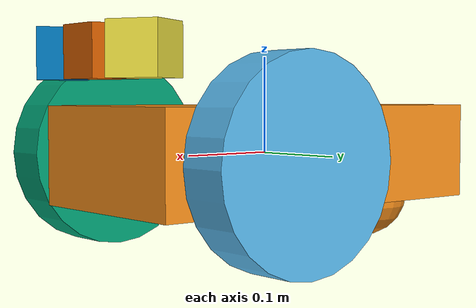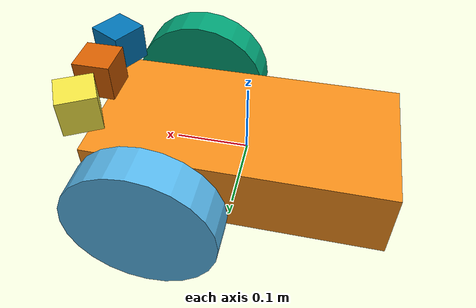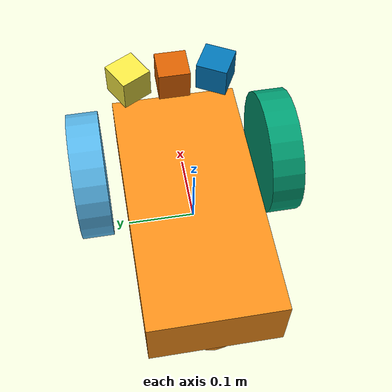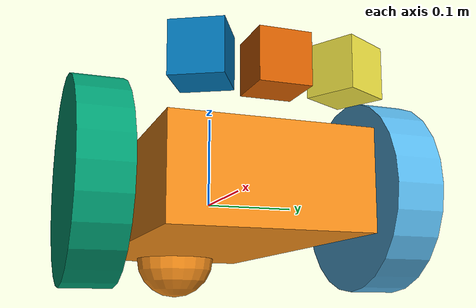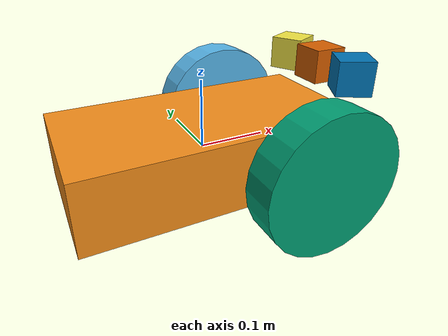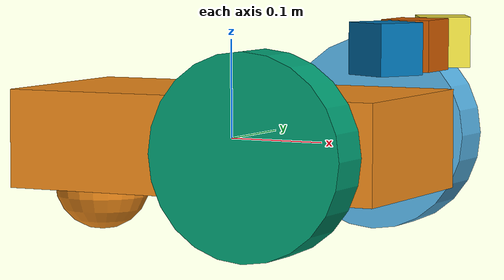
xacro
<?xml version='1.0'?>

<robot name="myrobot" xmlns:xacro="http://www.ros.org/wiki/xacro">

  <xacro:property name="cameraSize" value="0.05"/>
  <xacro:property name="cameraMass" value="0.1"/>

  <xacro:include filename="$(find mybot_description)/urdf/mybot.gazebo" />
  <xacro:include filename="$(find mybot_description)/urdf/materials.xacro" />
  <xacro:include filename="$(find mybot_description)/urdf/macros.xacro" />

  <link name='chassis'>
    <pose>0 0 0.1 0 0 0</pose>

    <inertial>
      <mass value="10.0"/>
      <origin xyz="0.0 0 0.1" rpy=" 0 0 0"/>
      <inertia
          ixx="0.5" ixy="0" ixz="0"
          iyy="1.0" iyz="0"
          izz="0.1"
      />
    </inertial>

    <collision name='collision'>
      <geometry>
        <box size=".4 .2 .1"/>
      </geometry>
    </collision>

    <visual name='chassis_visual'>
      <origin xyz="0 0 0" rpy=" 0 0 0"/>
      <geometry>
        <box size=".4 .2 .1"/>
      </geometry>
    </visual>

    <collision name='caster_collision'>
      <origin xyz="-0.15 0 -0.05" rpy=" 0 0 0"/>
      <geometry>
        <sphere radius="0.05"/>
      </geometry>
      <surface>
        <friction>
          <ode>
            <mu>0</mu>
            <mu2>0</mu2>
            <slip1>1.0</slip1>
            <slip2>1.0</slip2>
          </ode>
        </friction>
      </surface>
    </collision>

    <visual name='caster_visual'>
      <origin xyz="-0.15 0 -0.05" rpy=" 0 0 0"/>
      <geometry>
        <sphere radius="0.05"/>
      </geometry>
    </visual>
  </link>

  <link name="left_wheel">
    <!--origin xyz="0.1 0.13 0.1" rpy="0 1.5707 1.5707"/-->
    <collision name="collision">
      <origin xyz="0 0 0" rpy="0 1.5707 1.5707"/>
      <geometry>
        <cylinder radius="0.1" length="0.05"/>
      </geometry>
    </collision>
    <visual name="left_wheel_visual">
      <origin xyz="0 0 0" rpy="0 1.5707 1.5707"/>
      <geometry>
        <cylinder radius="0.1" length="0.05"/>
      </geometry>
    </visual>
    <inertial>
      <origin xyz="0 0 0" rpy="0 1.5707 1.5707"/>
      <mass value="5"/>
      <cylinder_inertia m="5" r="0.1" h="0.05"/>
      <inertia
        ixx="1.0" ixy="0.0" ixz="0.0"
        iyy="1.0" iyz="0.0"
        izz="1.0"/>
    </inertial>
  </link>

  <link name="right_wheel">
    <!--origin xyz="0.1 -0.13 0.1" rpy="0 1.5707 1.5707"/-->
    <collision name="collision">
      <origin xyz="0 0 0" rpy="0 1.5707 1.5707"/>
      <geometry>
        <cylinder radius="0.1" length="0.05"/>
      </geometry>
    </collision>
    <visual name="right_wheel_visual">
      <origin xyz="0 0 0" rpy="0 1.5707 1.5707"/>
      <geometry>
        <cylinder radius="0.1" length="0.05"/>
      </geometry>
    </visual>
    <inertial>
      <origin xyz="0 0 0" rpy="0 1.5707 1.5707"/>
      <mass value="5"/>
      <cylinder_inertia m="5" r="0.1" h="0.05"/>
      <inertia
        ixx="1.0" ixy="0.0" ixz="0.0"
        iyy="1.0" iyz="0.0"
        izz="1.0"/>
    </inertial>
  </link>

  <joint type="continuous" name="left_wheel_hinge">
    <origin xyz="0.1 0.15 0" rpy="0 0 0"/>
    <child link="left_wheel"/>
    <parent link="chassis"/>
    <axis xyz="0 1 0" rpy="0 0 0"/>
    <limit effort="100" velocity="100"/>
    <joint_properties damping="0.0" friction="0.0"/>
  </joint>

  <joint type="continuous" name="right_wheel_hinge">
    <origin xyz="0.1 -0.15 0" rpy="0 0 0"/>
    <child link="right_wheel"/>
    <parent link="chassis"/>
    <axis xyz="0 1 0" rpy="0 0 0"/>
    <limit effort="100" velocity="100"/>
    <joint_properties damping="0.0" friction="0.0"/>
  </joint>

  <link name="base_sonar_front1">
    <visual>
      <origin xyz="0 0 0" rpy="0 0 0"/>
      <geometry>
        <box size="0.05 0.05 0.05"/>
      </geometry>
    </visual>
    <inertial>
      <mass value="1e-5" />
      <origin xyz="0 0 0" rpy="0 0 0"/>
      <inertia ixx="1e-6" ixy="0" ixz="0" iyy="1e-6" iyz="0" izz="1e-6" />
    </inertial>
  </link>
  <joint name="sonar_front_joint1" type="fixed">
    <axis xyz="0 1 0" />
    <origin rpy="0 0 0.5" xyz="0.2 0.07 0.1" />
    <parent link="chassis"/>
    <child link="base_sonar_front1"/>
  </joint>

  <link name="base_sonar_front2">
    <visual>
      <origin xyz="0 0 0" rpy="0 0 0"/>
      <geometry>
        <box size="0.05 0.05 0.05"/>
      </geometry>
    </visual>
    <inertial>
      <mass value="1e-5" />
      <origin xyz="0 0 0" rpy="0 0 0"/>
      <inertia ixx="1e-6" ixy="0" ixz="0" iyy="1e-6" iyz="0" izz="1e-6" />
    </inertial>
  </link>

     <joint name="sonar_front_joint2" type="fixed">
    <axis xyz="0 1 0" />
    <origin rpy="0 0 -0.5" xyz="0.2 -0.07 0.1" />
    <parent link="chassis"/>
    <child link="base_sonar_front2"/>
  </joint>

    <link name="base_sonar_front3">
    <visual>
      <origin xyz="0 0 0" rpy="0 0 0"/>
      <geometry>
        <box size="0.05 0.05 0.05"/>
      </geometry>
    </visual>
    <inertial>
      <mass value="1e-5" />
      <origin xyz="0 0 0" rpy="0 0 0"/>
      <inertia ixx="1e-6" ixy="0" ixz="0" iyy="1e-6" iyz="0" izz="1e-6" />
    </inertial>
  </link>

   <joint name="sonar_front_joint3" type="fixed">
    <axis xyz="0 1 0" />
    <origin rpy="0 0 0" xyz="0.2 0 0.1" />
    <parent link="chassis"/>
    <child link="base_sonar_front3"/>
  </joint>

</robot>
